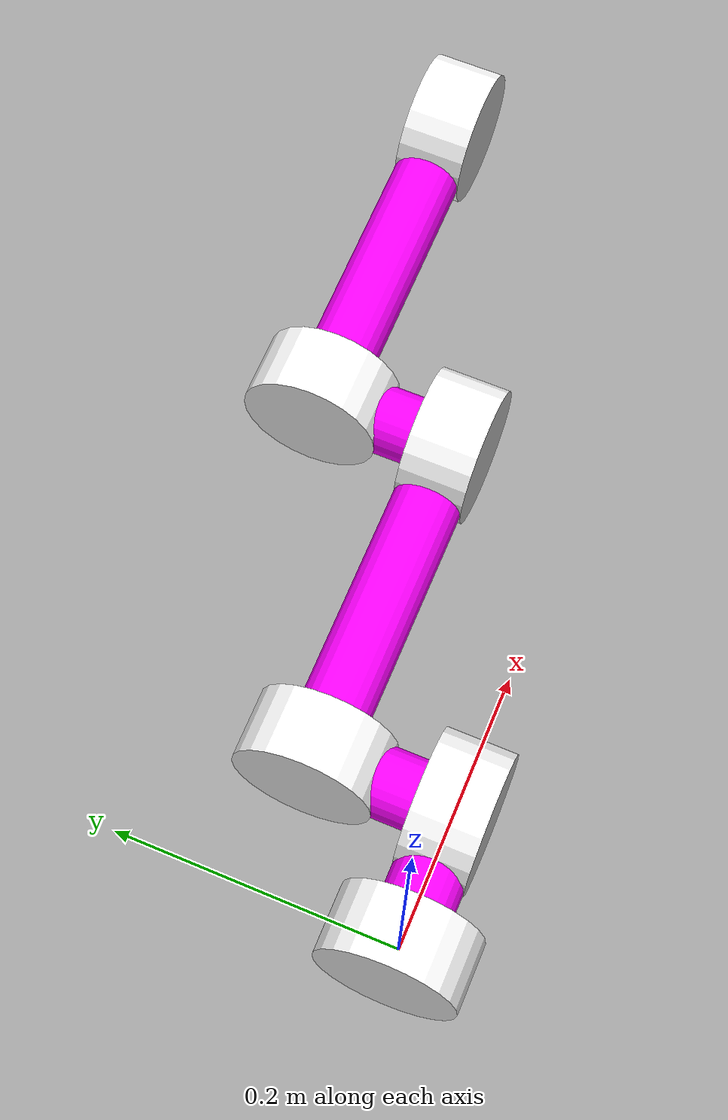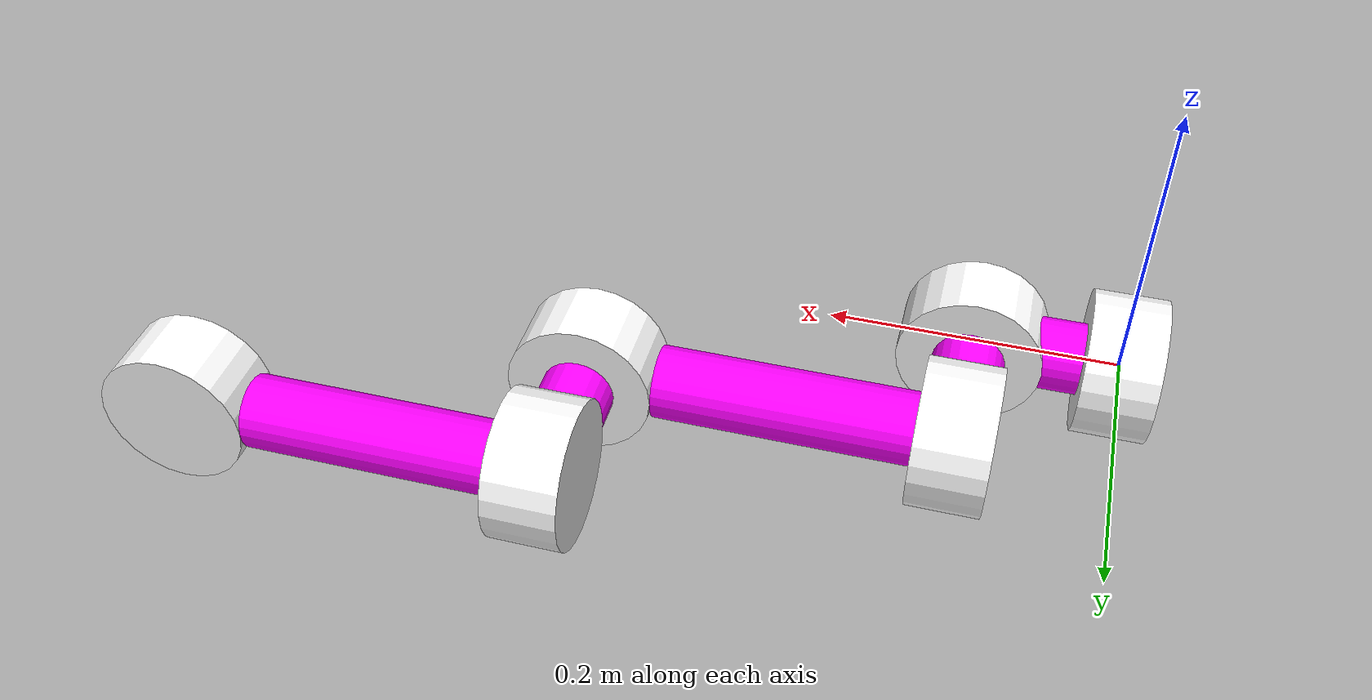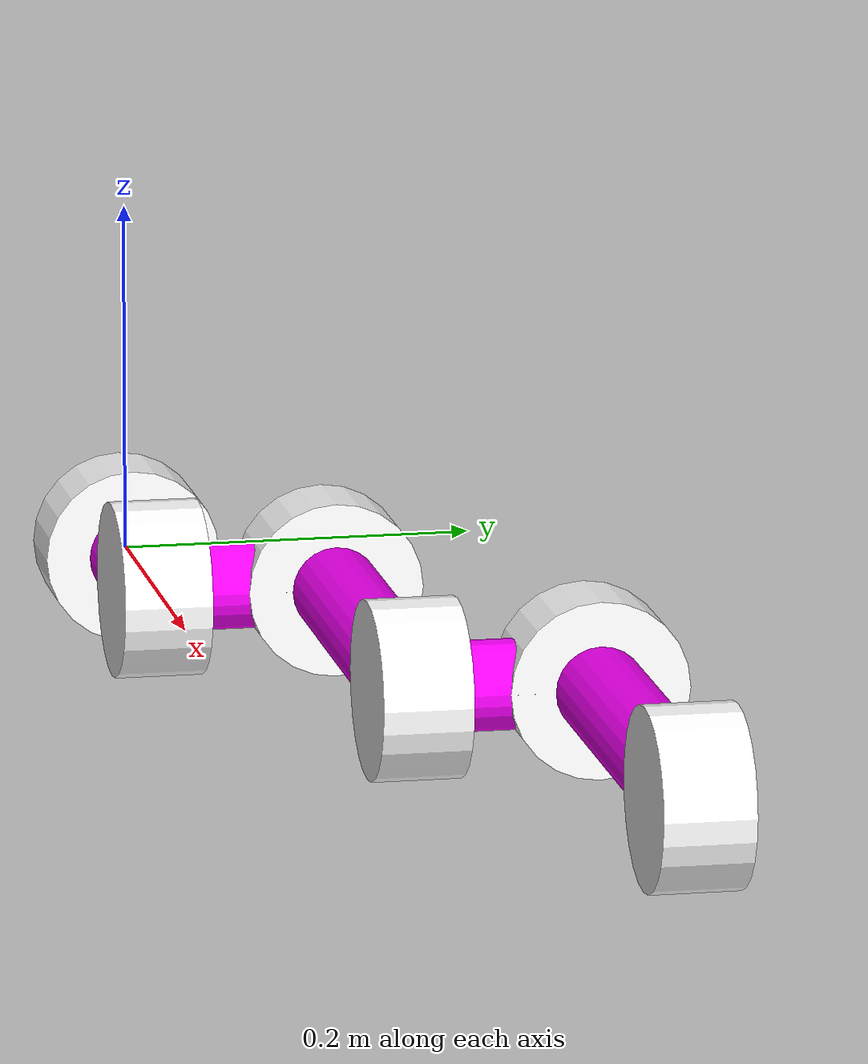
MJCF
<mujoco model="positronic_roboarm">
  <compiler angle="radian"/>
  <option timestep="0.001" integrator="implicitfast"/>
  <default>
    <default class="visual">
      <geom contype="0" conaffinity="0" group="2" rgba="0.75 0.75 0.75 1"/>
    </default>
    <default class="collision">
      <geom group="3"/>
    </default>
    <default class="motor_visual">
      <geom contype="0" conaffinity="0" group="2" rgba="1 1 1 1"/>
    </default>
    <default class="link_visual">
      <geom contype="0" conaffinity="0" group="2" rgba="1 0 1 1"/>
    </default>
    <joint actuatorfrcrange="-40 40"/>
  </default>

  <worldbody>
    <body name="link1" quat="0 0.707107 0 0.707107">
      <inertial pos="0 0 0" quat="0 0.707107 0 0.707107" mass="1.01" diaginertia="0.001259 0.000851 0.000843"/>
      <joint name="joint_1" pos="0 0 0" axis="0 0 1"/>
      <site name="joint_1_site" pos="0 0 0"/>
      <!-- Motor visual and collision -->
      <geom class="motor_visual" type="cylinder" size="0.05 0.025" pos="0 0 0"/>
      <geom class="collision" type="cylinder" size="0.05 0.025" pos="0 0 0"/>
      <!-- Link visual and collision -->
      <geom class="link_visual" type="cylinder" size="0.025 0.05" pos="0 0 0.05"/>
      <geom class="collision" type="cylinder" size="0.025 0.05" pos="0 0 0.05"/>
      <body name="link2" pos="0 0 0.1" quat="0.707105 0.707108 0 0">
        <inertial pos="0 0 0" quat="0 0.707107 0 0.707107" mass="1.01" diaginertia="0.001259 0.000851 0.000843"/>
        <joint name="joint_2" pos="0 0 0" axis="0 0 1"/>
        <site name="joint_2_site" pos="0 0 0"/>
        <!-- Motor visual and collision -->
        <geom class="motor_visual" type="cylinder" size="0.05 0.025" pos="0 0 0"/>
        <geom class="collision" type="cylinder" size="0.05 0.025" pos="0 0 0"/>
        <!-- Link visual and collision -->
        <geom class="link_visual" type="cylinder" size="0.025 0.05" pos="0 0 0.05"/>
        <geom class="collision" type="cylinder" size="0.025 0.05" pos="0 0 0.05"/>
        <body name="link3" pos="0 0 0.1" quat="0.707105 -0.707108 0 0">
          <inertial pos="0 0 0" quat="0 0.707107 0 0.707107" mass="1.01" diaginertia="0.001259 0.000851 0.000843"/>
          <joint name="joint_3" pos="0 0 0" axis="0 0 1"/>
          <site name="joint_3_site" pos="0 0 0"/>
          <!-- Motor visual and collision -->
          <geom class="motor_visual" type="cylinder" size="0.05 0.025" pos="0 0 0"/>
          <geom class="collision" type="cylinder" size="0.05 0.025" pos="0 0 0"/>
          <!-- Link visual and collision -->
          <geom class="link_visual" type="cylinder" size="0.025 0.1" pos="0 0 0.1"/>
          <geom class="collision" type="cylinder" size="0.025 0.1" pos="0 0 0.1"/>
          <body name="link4" pos="0 0 0.25" quat="0.707105 0.707108 0 0">
            <inertial pos="0 0 0" quat="0 0.707107 0 0.707107" mass="1.01" diaginertia="0.001259 0.000851 0.000843"/>
            <joint name="joint_4" pos="0 0 0" axis="0 0 1"/>
            <site name="joint_4_site" pos="0 0 0"/>
            <!-- Motor visual and collision -->
            <geom class="motor_visual" type="cylinder" size="0.05 0.025" pos="0 0 0"/>
            <geom class="collision" type="cylinder" size="0.05 0.025" pos="0 0 0"/>
            <!-- Link visual and collision -->
            <geom class="link_visual" type="cylinder" size="0.025 0.05" pos="0 0 0.05"/>
            <geom class="collision" type="cylinder" size="0.025 0.05" pos="0 0 0.05"/>
            <body name="link5" pos="0 0 0.1" quat="0.707105 -0.707108 0 0">
              <inertial pos="0 0 0" quat="0 0.707107 0 0.707107" mass="1.01" diaginertia="0.001259 0.000851 0.000843"/>
              <joint name="joint_5" pos="0 0 0" axis="0 0 1"/>
              <site name="joint_5_site" pos="0 0 0"/>
              <!-- Motor visual and collision -->
              <geom class="motor_visual" type="cylinder" size="0.05 0.025" pos="0 0 0"/>
              <geom class="collision" type="cylinder" size="0.05 0.025" pos="0 0 0"/>
              <!-- Link visual and collision -->
              <geom class="link_visual" type="cylinder" size="0.025 0.1" pos="0 0 0.1"/>
              <geom class="collision" type="cylinder" size="0.025 0.1" pos="0 0 0.1"/>
              <body name="link6" pos="0 0 0.25" quat="0.707105 0.707108 0 0">
                <inertial pos="0 0 0" quat="0 0.707107 0 0.707107" mass="1.01" diaginertia="0.001259 0.000851 0.000843"/>
                <joint name="joint_6" pos="0 0 0" axis="0 0 1"/>
                <site name="joint_6_site" pos="0 0 0"/>
                <!-- Motor visual and collision -->
                <geom class="motor_visual" type="cylinder" size="0.05 0.025" pos="0 0 0"/>
                <geom class="collision" type="cylinder" size="0.05 0.025" pos="0 0 0"/>
                <site name="end_effector" pos="0 0 0"/>
                <body name="payload" pos="0 0 0.1">
                  <inertial pos="0 0 0" mass="2" diaginertia="0.00333333 0.00166667 0.00166667"/>
                </body>
              </body>
            </body>
          </body>
        </body>
      </body>
    </body>
  </worldbody>

  <actuator>
    <position name="actuator_1" joint="joint_1" kp="1000" kv="100" ctrlrange="-3.1416 3.1416"/>
    <position name="actuator_2" joint="joint_2" kp="1000" kv="100" ctrlrange="-1.5708 1.5708"/>
    <position name="actuator_3" joint="joint_3" kp="1000" kv="100" ctrlrange="-1.5708 1.5708"/>
    <position name="actuator_4" joint="joint_4" kp="1000" kv="100" ctrlrange="-1.5708 1.5708"/>
    <position name="actuator_5" joint="joint_5" kp="1000" kv="100" ctrlrange="-1.5708 1.5708"/>
    <position name="actuator_6" joint="joint_6" kp="1000" kv="100" ctrlrange="-1.5708 1.5708"/>
  </actuator>

  <sensor>
    <torque name="torque_1" site="joint_1_site"/>
    <torque name="torque_2" site="joint_2_site"/>
    <torque name="torque_3" site="joint_3_site"/>
    <torque name="torque_4" site="joint_4_site"/>
    <torque name="torque_5" site="joint_5_site"/>
    <torque name="torque_6" site="joint_6_site"/>
  </sensor>
</mujoco>
